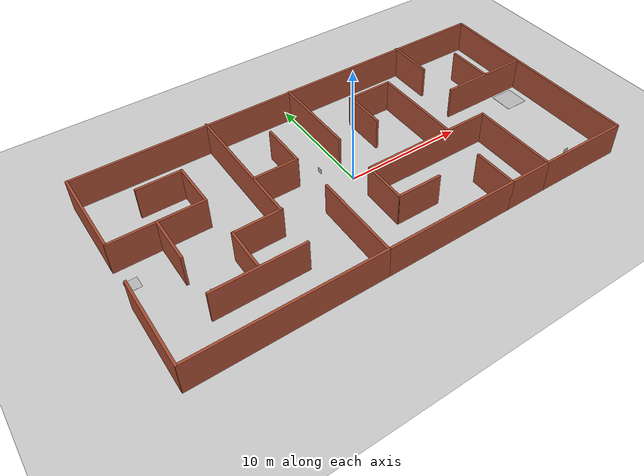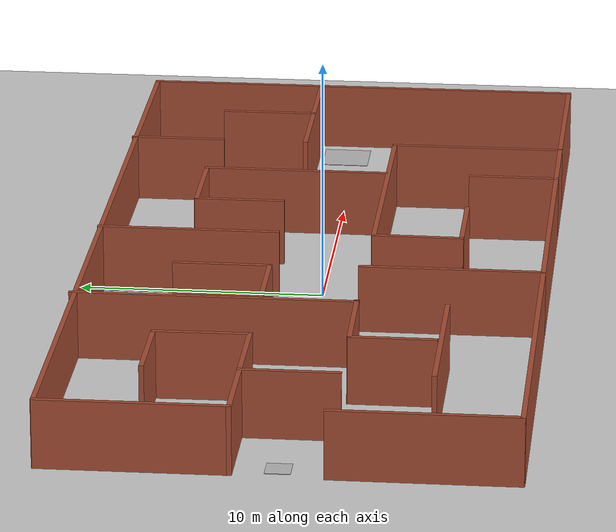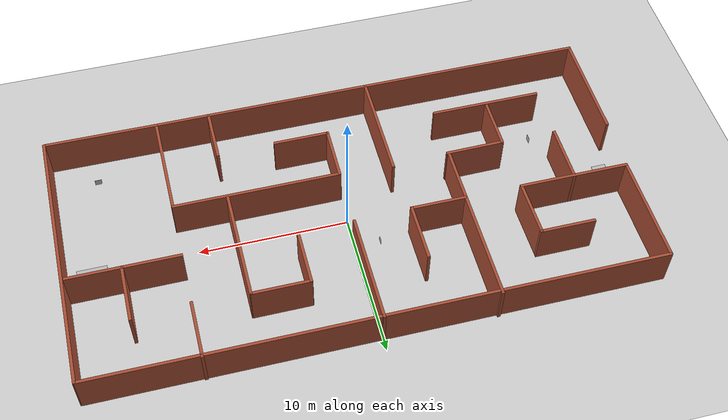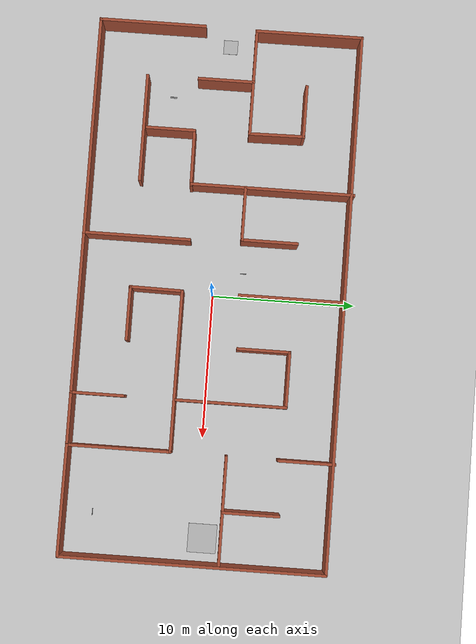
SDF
<sdf version="1.6">
 <world name="default">
  <light name="sun" type="directional">
   <pose>0 0 10 0 -0 0</pose>
   <diffuse>0.8 0.8 0.8 1</diffuse>
   <specular>0.2 0.2 0.2 1</specular>
   <attenuation>
    <range>1000</range>
    <constant>0.9</constant>
    <linear>0.01</linear>
    <quadratic>0.001</quadratic>
   </attenuation>
   <direction>-0.5 0.1 -0.9</direction>
  </light>
  <model name="ground_plane">
   <static>1</static>
   <link name="link">
    <collision name="collision">
     <geometry><plane><normal>0 0 1</normal><size>300 300</size></plane></geometry>
     <surface><friction><ode><mu>100</mu><mu2>50</mu2></ode></friction></surface>
    </collision>
    <visual name="visual">
     <cast_shadows>0</cast_shadows>
     <geometry><plane><normal>0 0 1</normal><size>300 300</size></plane></geometry>
     <material>
      <script><uri>file://media/materials/scripts/gazebo.material</uri><name>Gazebo/Grey</name></script>
     </material>
    </visual>
   </link>
  </model>
  <gravity>0 0 -9.8</gravity>
  <magnetic_field>6e-06 2.3e-05 -4.2e-05</magnetic_field>
  <atmosphere type="adiabatic"/>
  <physics name="default_physics" default="0" type="ode">
   <max_step_size>0.001</max_step_size>
   <real_time_factor>1</real_time_factor>
   <real_time_update_rate>1000</real_time_update_rate>
  </physics>
  <scene><ambient>0.4 0.4 0.4 1</ambient><background>0.7 0.7 0.7 1</background><shadows>1</shadows></scene>
  <spherical_coordinates>
   <surface_model>EARTH_WGS84</surface_model>
   <latitude_deg>0</latitude_deg>
   <longitude_deg>0</longitude_deg>
   <elevation>0</elevation>
   <heading_deg>0</heading_deg>
  </spherical_coordinates>
  <model name="ceiling">
   <link name="link">
    <inertial>
     <mass>100000</mass>
     <inertia><ixx>100000</ixx><ixy>0</ixy><ixz>0</ixz><iyy>100000</iyy><iyz>0</iyz><izz>100000</izz></inertia>
    </inertial>
    <collision name="collision">
     <geometry><box><size>300 300 0.5</size></box></geometry>
     <friction><ode><mu>1</mu><mu2>1</mu2></ode></friction>
     <contact><ode><kp>1e+07</kp><kd>1</kd><min_depth>0.001</min_depth><max_vel>0.1</max_vel></ode></contact>
    </collision>
   </link>
   <pose>0 0 5 0 0 0</pose>
  </model>
  <model name="takeoff">
   <static>1</static>
   <link name="link">
    <visual name="visual">
     <geometry><mesh><uri>model://takeoff/meshes/takeoff.dae</uri><scale>2 2 2</scale></mesh></geometry>
    </visual>
    <collision name="Takeoff_Collision">
     <geometry><mesh><uri>model://takeoff/meshes/takeoff.dae</uri><scale>2 2 2</scale></mesh></geometry>
    </collision>
   </link>
   <pose>-18 -0.5 0 0 1.57 1.57</pose>
  </model>
  <model name="landing2">
   <static>1</static>
   <link name="link">
    <visual name="visual">
     <geometry><mesh><uri>model://landing2/meshes/landing2.dae</uri><scale>2 4 4</scale></mesh></geometry>
    </visual>
    <collision name="Landing_2_Collision">
     <geometry><mesh><uri>model://landing2/meshes/landing2.dae</uri><scale>2 4 4</scale></mesh></geometry>
    </collision>
   </link>
   <pose>17 -0.5 0 0 1.57 1.57</pose>
  </model>
  <model name="map2_2">
   <pose>0.0056 0.04477 0 0 -0 0</pose>
   <link name="Wall_0">
    <collision name="Wall_0_Collision">
     <geometry><box><size>7.5 0.2 3</size></box></geometry>
     <pose>0 0 1.25 0 -0 0</pose>
    </collision>
    <visual name="Wall_0_Visual">
     <pose>0 0 1.25 0 -0 0</pose>
     <geometry><box><size>7.5 0.2 3</size></box></geometry>
     <material>
      <script><uri>file://media/materials/scripts/gazebo.material</uri><name>Gazebo/Bricks</name></script>
      <ambient>1 1 1 1</ambient>
     </material>
     <meta><layer>0</layer></meta>
    </visual>
    <pose>-18.6971 -5.55982 0 0 -0 -1.5708</pose>
   </link>
   <link name="Wall_1">
    <collision name="Wall_1_Collision">
     <geometry><box><size>15.25 0.2 3</size></box></geometry>
     <pose>0 0 1.25 0 -0 0</pose>
    </collision>
    <visual name="Wall_1_Visual">
     <pose>0 0 1.25 0 -0 0</pose>
     <geometry><box><size>15.25 0.2 3</size></box></geometry>
     <material>
      <script><uri>file://media/materials/scripts/gazebo.material</uri><name>Gazebo/Bricks</name></script>
      <ambient>1 1 1 1</ambient>
     </material>
     <meta><layer>0</layer></meta>
    </visual>
    <pose>-11.1471 -9.23482 0 0 -0 0</pose>
   </link>
   <link name="Wall_10">
    <collision name="Wall_10_Collision">
     <geometry><box><size>3.74364 0.2 3</size></box></geometry>
     <pose>0 0 1.25 0 -0 0</pose>
    </collision>
    <visual name="Wall_10_Visual">
     <pose>0 0 1.25 0 -0 0</pose>
     <geometry><box><size>3.74364 0.2 3</size></box></geometry>
     <material>
      <script><uri>file://media/materials/scripts/gazebo.material</uri><name>Gazebo/Bricks</name></script>
      <ambient>1 1 1 1</ambient>
     </material>
     <meta><layer>0</layer></meta>
    </visual>
    <pose>-0.017284 -3.93118 0 0 -0 -1.58206</pose>
   </link>
   <link name="Wall_11">
    <collision name="Wall_11_Collision">
     <geometry><box><size>3.75 0.2 3</size></box></geometry>
     <pose>0 0 1.25 0 -0 0</pose>
    </collision>
    <visual name="Wall_11_Visual">
     <pose>0 0 1.25 0 -0 0</pose>
     <geometry><box><size>3.75 0.2 3</size></box></geometry>
     <material>
      <script><uri>file://media/materials/scripts/gazebo.material</uri><name>Gazebo/Bricks</name></script>
      <ambient>1 1 1 1</ambient>
     </material>
     <meta><layer>0</layer></meta>
    </visual>
    <pose>1.80294 -5.72755 0 0 -0 0</pose>
   </link>
   <link name="Wall_13">
    <collision name="Wall_13_Collision">
     <geometry><box><size>7.70354 0.2 3</size></box></geometry>
     <pose>0 0 1.25 0 -0 0</pose>
    </collision>
    <visual name="Wall_13_Visual">
     <pose>0 0 1.25 0 -0 0</pose>
     <geometry><box><size>7.70354 0.2 3</size></box></geometry>
     <material>
      <script><uri>file://media/materials/scripts/gazebo.material</uri><name>Gazebo/Bricks</name></script>
      <ambient>1 1 1 1</ambient>
     </material>
     <meta><layer>0</layer></meta>
    </visual>
    <pose>14.8797 -9.25516 0 0 -0 -0.005386</pose>
   </link>
   <link name="Wall_14">
    <collision name="Wall_14_Collision">
     <geometry><box><size>18.5 0.2 3</size></box></geometry>
     <pose>0 0 1.25 0 -0 0</pose>
    </collision>
    <visual name="Wall_14_Visual">
     <pose>0 0 1.25 0 -0 0</pose>
     <geometry><box><size>18.5 0.2 3</size></box></geometry>
     <material>
      <script><uri>file://media/materials/scripts/gazebo.material</uri><name>Gazebo/Bricks</name></script>
      <ambient>1 1 1 1</ambient>
     </material>
     <meta><layer>0</layer></meta>
    </visual>
    <pose>18.6971 -0.100502 0 0 -0 1.5708</pose>
   </link>
   <link name="Wall_15">
    <collision name="Wall_15_Collision">
     <geometry><box><size>37.4534 0.2 3</size></box></geometry>
     <pose>0 0 1.25 0 -0 0</pose>
    </collision>
    <visual name="Wall_15_Visual">
     <pose>0 0 1.25 0 -0 0</pose>
     <geometry><box><size>37.4534 0.2 3</size></box></geometry>
     <material>
      <script><uri>file://media/materials/scripts/gazebo.material</uri><name>Gazebo/Bricks</name></script>
      <ambient>1 1 1 1</ambient>
     </material>
     <meta><layer>0</layer></meta>
    </visual>
    <pose>0.004657 9.09484 0 0 -0 3.1405</pose>
   </link>
   <link name="Wall_16">
    <collision name="Wall_16_Collision">
     <geometry><box><size>7.49081 0.2 3</size></box></geometry>
     <pose>0 0 1.25 0 -0 0</pose>
    </collision>
    <visual name="Wall_16_Visual">
     <pose>0 0 1.25 0 -0 0</pose>
     <geometry><box><size>7.49081 0.2 3</size></box></geometry>
     <material>
      <script><uri>file://media/materials/scripts/gazebo.material</uri><name>Gazebo/Bricks</name></script>
      <ambient>1 1 1 1</ambient>
     </material>
     <meta><layer>0</layer></meta>
    </visual>
    <pose>-18.6337 5.4448 0 0 -0 -1.56715</pose>
   </link>
   <link name="Wall_17">
    <collision name="Wall_17_Collision">
     <geometry><box><size>7.5 0.2 3</size></box></geometry>
     <pose>0 0 1.25 0 -0 0</pose>
    </collision>
    <visual name="Wall_17_Visual">
     <pose>0 0 1.25 0 -0 0</pose>
     <geometry><box><size>7.5 0.2 3</size></box></geometry>
     <material>
      <script><uri>file://media/materials/scripts/gazebo.material</uri><name>Gazebo/Bricks</name></script>
      <ambient>1 1 1 1</ambient>
     </material>
     <meta><layer>0</layer></meta>
    </visual>
    <pose>-14.9721 1.74767 0 0 -0 0</pose>
   </link>
   <link name="Wall_19">
    <collision name="Wall_19_Collision">
     <geometry><box><size>3.91089 0.2 3</size></box></geometry>
     <pose>0 0 1.25 0 -0 0</pose>
    </collision>
    <visual name="Wall_19_Visual">
     <pose>0 0 1.25 0 -0 0</pose>
     <geometry><box><size>3.91089 0.2 3</size></box></geometry>
     <material>
      <script><uri>file://media/materials/scripts/gazebo.material</uri><name>Gazebo/Bricks</name></script>
      <ambient>1 1 1 1</ambient>
     </material>
     <meta><layer>0</layer></meta>
    </visual>
    <pose>-11.3358 3.62476 0 0 -0 1.58502</pose>
   </link>
   <link name="Wall_2">
    <collision name="Wall_2_Collision">
     <geometry><box><size>7.5 0.2 3</size></box></geometry>
     <pose>0 0 1.25 0 -0 0</pose>
    </collision>
    <visual name="Wall_2_Visual">
     <pose>0 0 1.25 0 -0 0</pose>
     <geometry><box><size>7.5 0.2 3</size></box></geometry>
     <material>
      <script><uri>file://media/materials/scripts/gazebo.material</uri><name>Gazebo/Bricks</name></script>
      <ambient>1 1 1 1</ambient>
     </material>
     <meta><layer>0</layer></meta>
    </visual>
    <pose>-3.59706 -5.55982 0 0 -0 1.5708</pose>
   </link>
   <link name="Wall_20">
    <collision name="Wall_20_Collision">
     <geometry><box><size>3.75 0.2 3</size></box></geometry>
     <pose>0 0 1.25 0 -0 0</pose>
    </collision>
    <visual name="Wall_20_Visual">
     <pose>0 0 1.25 0 -0 0</pose>
     <geometry><box><size>3.75 0.2 3</size></box></geometry>
     <material>
      <script><uri>file://media/materials/scripts/gazebo.material</uri><name>Gazebo/Bricks</name></script>
      <ambient>1 1 1 1</ambient>
     </material>
     <meta><layer>0</layer></meta>
    </visual>
    <pose>-13.1358 5.50501 0 0 -0 3.14159</pose>
   </link>
   <link name="Wall_22">
    <collision name="Wall_22_Collision">
     <geometry><box><size>4 0.2 3</size></box></geometry>
     <pose>0 0 1.25 0 -0 0</pose>
    </collision>
    <visual name="Wall_22_Visual">
     <pose>0 0 1.25 0 -0 0</pose>
     <geometry><box><size>4 0.2 3</size></box></geometry>
     <material>
      <script><uri>file://media/materials/scripts/gazebo.material</uri><name>Gazebo/Bricks</name></script>
      <ambient>1 1 1 1</ambient>
     </material>
     <meta><layer>0</layer></meta>
    </visual>
    <pose>-14.9648 -0.147796 0 0 -0 -1.5708</pose>
   </link>
   <link name="Wall_24">
    <collision name="Wall_24_Collision">
     <geometry><box><size>7.5 0.2 3</size></box></geometry>
     <pose>0 0 1.25 0 -0 0</pose>
    </collision>
    <visual name="Wall_24_Visual">
     <pose>0 0 1.25 0 -0 0</pose>
     <geometry><box><size>7.5 0.2 3</size></box></geometry>
     <material>
      <script><uri>file://media/materials/scripts/gazebo.material</uri><name>Gazebo/Bricks</name></script>
      <ambient>1 1 1 1</ambient>
     </material>
     <meta><layer>0</layer></meta>
    </visual>
    <pose>-11.2491 -5.66821 0 0 -0 0</pose>
   </link>
   <link name="Wall_26">
    <collision name="Wall_26_Collision">
     <geometry><box><size>3.5 0.2 3</size></box></geometry>
     <pose>0 0 1.25 0 -0 0</pose>
    </collision>
    <visual name="Wall_26_Visual">
     <pose>0 0 1.25 0 -0 0</pose>
     <geometry><box><size>3.5 0.2 3</size></box></geometry>
     <material>
      <script><uri>file://media/materials/scripts/gazebo.material</uri><name>Gazebo/Bricks</name></script>
      <ambient>1 1 1 1</ambient>
     </material>
     <meta><layer>0</layer></meta>
    </visual>
    <pose>-11.2624 -3.78978 0 0 -0 1.5708</pose>
   </link>
   <link name="Wall_27">
    <collision name="Wall_27_Collision">
     <geometry><box><size>3.99433 0.2 3</size></box></geometry>
     <pose>0 0 1.25 0 -0 0</pose>
    </collision>
    <visual name="Wall_27_Visual">
     <pose>0 0 1.25 0 -0 0</pose>
     <geometry><box><size>3.99433 0.2 3</size></box></geometry>
     <material>
      <script><uri>file://media/materials/scripts/gazebo.material</uri><name>Gazebo/Bricks</name></script>
      <ambient>1 1 1 1</ambient>
     </material>
     <meta><layer>0</layer></meta>
    </visual>
    <pose>-9.34038 -2.09444 0 0 -0 0.010583</pose>
   </link>
   <link name="Wall_28">
    <collision name="Wall_28_Collision">
     <geometry><box><size>11.5 0.2 3</size></box></geometry>
     <pose>0 0 1.25 0 -0 0</pose>
    </collision>
    <visual name="Wall_28_Visual">
     <pose>0 0 1.25 0 -0 0</pose>
     <geometry><box><size>11.5 0.2 3</size></box></geometry>
     <material>
      <script><uri>file://media/materials/scripts/gazebo.material</uri><name>Gazebo/Bricks</name></script>
      <ambient>1 1 1 1</ambient>
     </material>
     <meta><layer>0</layer></meta>
    </visual>
    <pose>-7.49969 3.60091 0 0 -0 1.5708</pose>
   </link>
   <link name="Wall_30">
    <collision name="Wall_30_Collision">
     <geometry><box><size>3.75 0.2 3</size></box></geometry>
     <pose>0 0 1.25 0 -0 0</pose>
    </collision>
    <visual name="Wall_30_Visual">
     <pose>0 0 1.25 0 -0 0</pose>
     <geometry><box><size>3.75 0.2 3</size></box></geometry>
     <material>
      <script><uri>file://media/materials/scripts/gazebo.material</uri><name>Gazebo/Bricks</name></script>
      <ambient>1 1 1 1</ambient>
     </material>
     <meta><layer>0</layer></meta>
    </visual>
    <pose>-5.6439 1.73652 0 0 -0 0</pose>
   </link>
   <link name="Wall_31">
    <collision name="Wall_31_Collision">
     <geometry><box><size>4 0.2 3</size></box></geometry>
     <pose>0 0 1.25 0 -0 0</pose>
    </collision>
    <visual name="Wall_31_Visual">
     <pose>0 0 1.25 0 -0 0</pose>
     <geometry><box><size>4 0.2 3</size></box></geometry>
     <material>
      <script><uri>file://media/materials/scripts/gazebo.material</uri><name>Gazebo/Bricks</name></script>
      <ambient>1 1 1 1</ambient>
     </material>
     <meta><layer>0</layer></meta>
    </visual>
    <pose>-3.8439 3.66152 0 0 -0 1.5708</pose>
   </link>
   <link name="Wall_33">
    <collision name="Wall_33_Collision">
     <geometry><box><size>7.5 0.2 3</size></box></geometry>
     <pose>0 0 1.25 0 -0 0</pose>
    </collision>
    <visual name="Wall_33_Visual">
     <pose>0 0 1.25 0 -0 0</pose>
     <geometry><box><size>7.5 0.2 3</size></box></geometry>
     <material>
      <script><uri>file://media/materials/scripts/gazebo.material</uri><name>Gazebo/Bricks</name></script>
      <ambient>1 1 1 1</ambient>
     </material>
     <meta><layer>0</layer></meta>
    </visual>
    <pose>0.007396 5.49289 0 0 -0 1.5708</pose>
   </link>
   <link name="Wall_35">
    <collision name="Wall_35_Collision">
     <geometry><box><size>3.75 0.2 3</size></box></geometry>
     <pose>0 0 1.25 0 -0 0</pose>
    </collision>
    <visual name="Wall_35_Visual">
     <pose>0 0 1.25 0 -0 0</pose>
     <geometry><box><size>3.75 0.2 3</size></box></geometry>
     <material>
      <script><uri>file://media/materials/scripts/gazebo.material</uri><name>Gazebo/Bricks</name></script>
      <ambient>1 1 1 1</ambient>
     </material>
     <meta><layer>0</layer></meta>
    </visual>
    <pose>3.70976 3.78063 0 0 -0 1.5708</pose>
   </link>
   <link name="Wall_36">
    <collision name="Wall_36_Collision">
     <geometry><box><size>3.91274 0.2 3</size></box></geometry>
     <pose>0 0 1.25 0 -0 0</pose>
    </collision>
    <visual name="Wall_36_Visual">
     <pose>0 0 1.25 0 -0 0</pose>
     <geometry><box><size>3.91274 0.2 3</size></box></geometry>
     <material>
      <script><uri>file://media/materials/scripts/gazebo.material</uri><name>Gazebo/Bricks</name></script>
      <ambient>1 1 1 1</ambient>
     </material>
     <meta><layer>0</layer></meta>
    </visual>
    <pose>5.59113 5.58063 0 0 -0 0</pose>
   </link>
   <link name="Wall_37">
    <collision name="Wall_37_Collision">
     <geometry><box><size>7.75 0.2 3</size></box></geometry>
     <pose>0 0 1.25 0 -0 0</pose>
    </collision>
    <visual name="Wall_37_Visual">
     <pose>0 0 1.25 0 -0 0</pose>
     <geometry><box><size>7.75 0.2 3</size></box></geometry>
     <material>
      <script><uri>file://media/materials/scripts/gazebo.material</uri><name>Gazebo/Bricks</name></script>
      <ambient>1 1 1 1</ambient>
     </material>
     <meta><layer>0</layer></meta>
    </visual>
    <pose>7.51319 1.78063 0 0 -0 -1.5708</pose>
   </link>
   <link name="Wall_39">
    <collision name="Wall_39_Collision">
     <geometry><box><size>4 0.2 3</size></box></geometry>
     <pose>0 0 1.25 0 -0 0</pose>
    </collision>
    <visual name="Wall_39_Visual">
     <pose>0 0 1.25 0 -0 0</pose>
     <geometry><box><size>4 0.2 3</size></box></geometry>
     <material>
      <script><uri>file://media/materials/scripts/gazebo.material</uri><name>Gazebo/Bricks</name></script>
      <ambient>1 1 1 1</ambient>
     </material>
     <meta><layer>0</layer></meta>
    </visual>
    <pose>11.1552 7.25693 0 0 -0 -1.5708</pose>
   </link>
   <link name="Wall_4">
    <collision name="Wall_4_Collision">
     <geometry><box><size>11.25 0.2 3</size></box></geometry>
     <pose>0 0 1.25 0 -0 0</pose>
    </collision>
    <visual name="Wall_4_Visual">
     <pose>0 0 1.25 0 -0 0</pose>
     <geometry><box><size>11.25 0.2 3</size></box></geometry>
     <material>
      <script><uri>file://media/materials/scripts/gazebo.material</uri><name>Gazebo/Bricks</name></script>
      <ambient>1 1 1 1</ambient>
     </material>
     <meta><layer>0</layer></meta>
    </visual>
    <pose>1.95294 -9.23482 0 0 -0 0</pose>
   </link>
   <link name="Wall_41">
    <collision name="Wall_41_Collision">
     <geometry><box><size>7.5 0.2 3</size></box></geometry>
     <pose>0 0 1.25 0 -0 0</pose>
    </collision>
    <visual name="Wall_41_Visual">
     <pose>0 0 1.25 0 -0 0</pose>
     <geometry><box><size>7.5 0.2 3</size></box></geometry>
     <material>
      <script><uri>file://media/materials/scripts/gazebo.material</uri><name>Gazebo/Bricks</name></script>
      <ambient>1 1 1 1</ambient>
     </material>
     <meta><layer>0</layer></meta>
    </visual>
    <pose>14.8302 1.73652 0 0 -0 0</pose>
   </link>
   <link name="Wall_43">
    <collision name="Wall_43_Collision">
     <geometry><box><size>4 0.2 3</size></box></geometry>
     <pose>0 0 1.25 0 -0 0</pose>
    </collision>
    <visual name="Wall_43_Visual">
     <pose>0 0 1.25 0 -0 0</pose>
     <geometry><box><size>4 0.2 3</size></box></geometry>
     <material>
      <script><uri>file://media/materials/scripts/gazebo.material</uri><name>Gazebo/Bricks</name></script>
      <ambient>1 1 1 1</ambient>
     </material>
     <meta><layer>0</layer></meta>
    </visual>
    <pose>14.9389 3.67662 0 0 -0 -1.5708</pose>
   </link>
   <link name="Wall_5">
    <collision name="Wall_5_Collision">
     <geometry><box><size>3.75 0.2 3</size></box></geometry>
     <pose>0 0 1.25 0 -0 0</pose>
    </collision>
    <visual name="Wall_5_Visual">
     <pose>0 0 1.25 0 -0 0</pose>
     <geometry><box><size>3.75 0.2 3</size></box></geometry>
     <material>
      <script><uri>file://media/materials/scripts/gazebo.material</uri><name>Gazebo/Bricks</name></script>
      <ambient>1 1 1 1</ambient>
     </material>
     <meta><layer>0</layer></meta>
    </visual>
    <pose>7.50294 -7.43482 0 0 -0 1.5708</pose>
   </link>
   <link name="Wall_7">
    <collision name="Wall_7_Collision">
     <geometry><box><size>3.75 0.2 3</size></box></geometry>
     <pose>0 0 1.25 0 -0 0</pose>
    </collision>
    <visual name="Wall_7_Visual">
     <pose>0 0 1.25 0 -0 0</pose>
     <geometry><box><size>3.75 0.2 3</size></box></geometry>
     <material>
      <script><uri>file://media/materials/scripts/gazebo.material</uri><name>Gazebo/Bricks</name></script>
      <ambient>1 1 1 1</ambient>
     </material>
     <meta><layer>0</layer></meta>
    </visual>
    <pose>9.30294 -9.23482 0 0 -0 0</pose>
   </link>
   <link name="Wall_8">
    <collision name="Wall_8_Collision">
     <geometry><box><size>7.25 0.2 3</size></box></geometry>
     <pose>0 0 1.25 0 -0 0</pose>
    </collision>
    <visual name="Wall_8_Visual">
     <pose>0 0 1.25 0 -0 0</pose>
     <geometry><box><size>7.25 0.2 3</size></box></geometry>
     <material>
      <script><uri>file://media/materials/scripts/gazebo.material</uri><name>Gazebo/Bricks</name></script>
      <ambient>1 1 1 1</ambient>
     </material>
     <meta><layer>0</layer></meta>
    </visual>
    <pose>11.1029 -5.68482 0 0 -0 1.5708</pose>
   </link>
   <link name="Wall_9">
    <collision name="Wall_9_Collision">
     <geometry><box><size>11.25 0.2 3</size></box></geometry>
     <pose>0 0 1.25 0 -0 0</pose>
    </collision>
    <visual name="Wall_9_Visual">
     <pose>0 0 1.25 0 -0 0</pose>
     <geometry><box><size>11.25 0.2 3</size></box></geometry>
     <material>
      <script><uri>file://media/materials/scripts/gazebo.material</uri><name>Gazebo/Bricks</name></script>
      <ambient>1 1 1 1</ambient>
     </material>
     <meta><layer>0</layer></meta>
    </visual>
    <pose>5.55294 -2.13482 0 0 -0 3.14159</pose>
   </link>
   <static>1</static>
  </model>
  <model name="target_red">
   <static>0</static>
   <link name="link">
    <collision name="Target_Red_Collision">
     <geometry>
      <mesh><uri>model://target_red/meshes/target_red.dae</uri><scale>0.9 0.9 0.9</scale></mesh>
     </geometry>
    </collision>
    <visual name="visual">
     <geometry>
      <mesh><uri>model://target_red/meshes/target_red.dae</uri><scale>0.9 0.9 0.9</scale></mesh>
     </geometry>
    </visual>
    <gravity>0</gravity>
   </link>
   <pose>-14.0154 -3.80108 0 0 -0 0</pose>
  </model>
  <model name="target_blue">
   <static>0</static>
   <link name="link">
    <collision name="Target_Blue_Collision">
     <geometry>
      <mesh><uri>model://target_blue/meshes/target_blue.dae</uri><scale>0.9 0.9 0.9</scale></mesh>
     </geometry>
    </collision>
    <visual name="visual">
     <geometry>
      <mesh><uri>model://target_blue/meshes/target_blue.dae</uri><scale>0.9 0.9 0.9</scale></mesh>
     </geometry>
    </visual>
    <gravity>0</gravity>
   </link>
   <pose>-1.7182 2.05164 0 0 -0 0</pose>
  </model>
  <model name="target_green">
   <static>0</static>
   <link name="link">
    <collision name="Target_Green_Collision">
     <geometry>
      <mesh><uri>model://target_green/meshes/target_green.dae</uri><scale>0.9 0.9 0.9</scale></mesh>
     </geometry>
    </collision>
    <visual name="visual">
     <geometry>
      <mesh><uri>model://target_green/meshes/target_green.dae</uri><scale>0.9 0.9 0.9</scale></mesh>
     </geometry>
    </visual>
    <gravity>0</gravity>
   </link>
   <pose>15.6869 -7.2778 0 0 -0 1.57396</pose>
  </model>
 </world>
</sdf>
